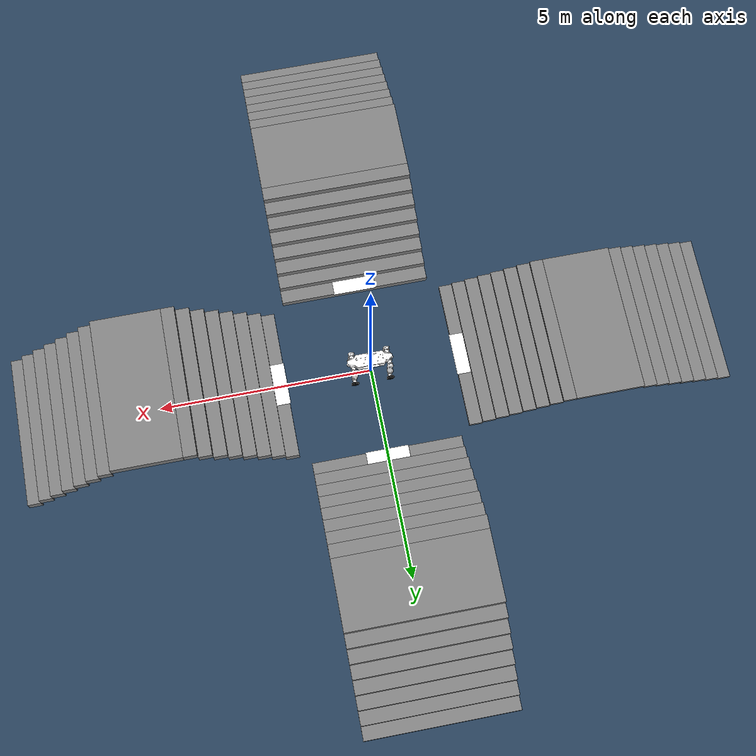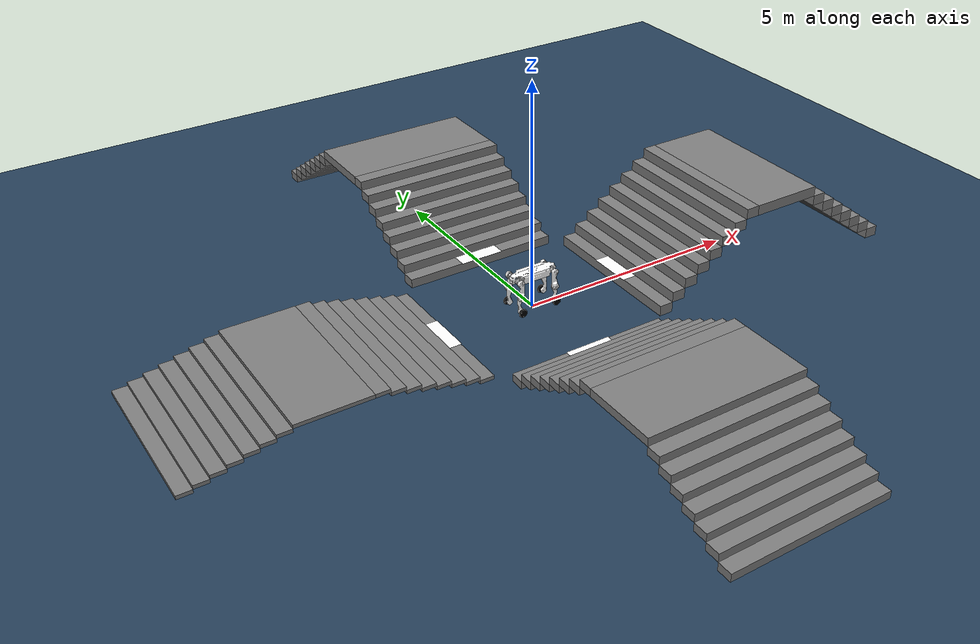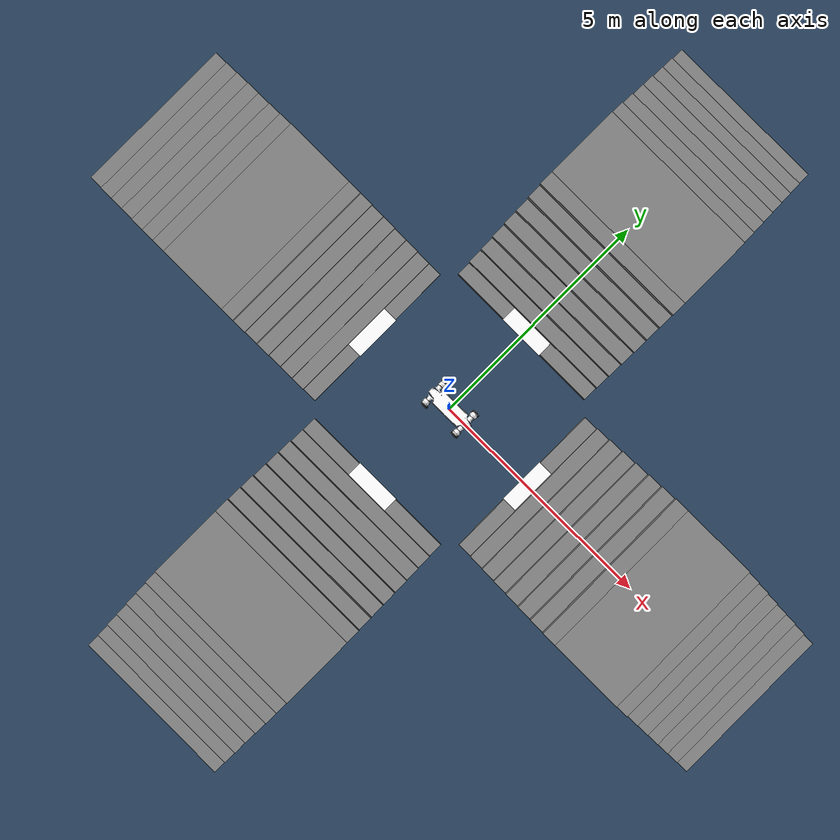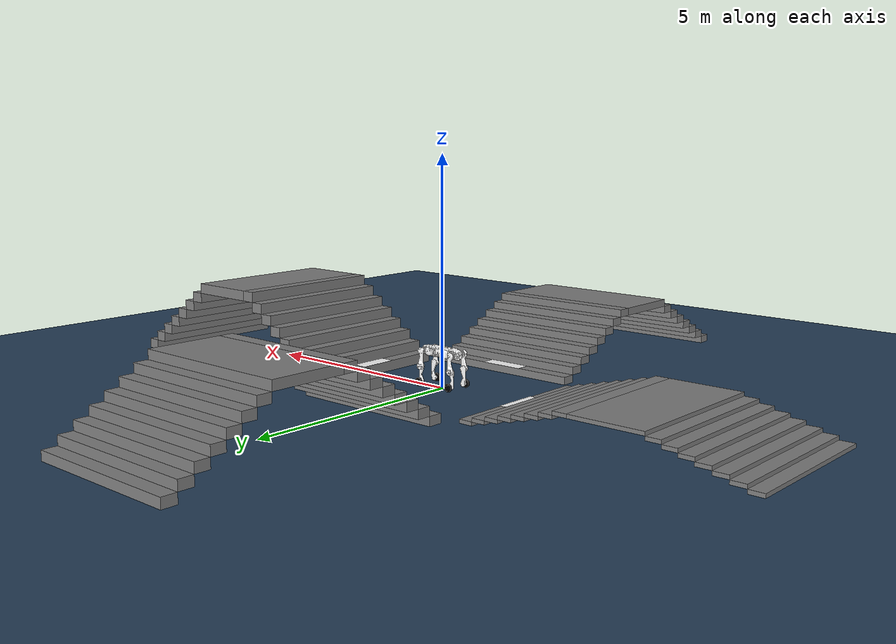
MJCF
<mujoco model="cross_stairs_1_4_7_10">
  <include file="m20_big.xml"/>
  <!-- Terrain: Cross Stairs Arch, Levels: 1,4,7,10. Cross Layout: Center Gap 2.0m. Arch step height: 0.0800 Arch step height: 0.2000 Arch step height: 0.2300 Arch step height: 0.1700 -->
  <statistic center="0 0 0.1" extent="0.8" />
  <visual>
    <headlight diffuse="0.6 0.6 0.6" ambient="0.3 0.3 0.3" specular="0 0 0" />
    <rgba haze="0.15 0.25 0.35 1" />
    <global azimuth="-130" elevation="-20" />
  </visual>
  <asset>
    <texture type="skybox" builtin="gradient" rgb1="0.3 0.5 0.7" rgb2="0 0 0" width="512" height="3072" />
    <texture type="2d" name="groundplane" builtin="checker" mark="edge" rgb1="0.2 0.3 0.4" rgb2="0.1 0.2 0.3" markrgb="0.8 0.8 0.8" width="300" height="300" />
    <material name="groundplane" texture="groundplane" texuniform="true" texrepeat="5 5" reflectance="0.0" />
    <texture name="tex_label_1" type="2d" file="./imgs/label_1.png" />
    <material name="mat_label_1" texture="tex_label_1" specular="0" shininess="0" emission="1" texrepeat="1 1" rgba="1 1 1 1" />
    <texture name="tex_label_7" type="2d" file="./imgs/label_7.png" />
    <material name="mat_label_7" texture="tex_label_7" specular="0" shininess="0" emission="1" texrepeat="1 1" rgba="1 1 1 1" />
    <texture name="tex_label_10" type="2d" file="./imgs/label_10.png" />
    <material name="mat_label_10" texture="tex_label_10" specular="0" shininess="0" emission="1" texrepeat="1 1" rgba="1 1 1 1" />
    <texture name="tex_label_4" type="2d" file="./imgs/label_4.png" />
    <material name="mat_label_4" texture="tex_label_4" specular="0" shininess="0" emission="1" texrepeat="1 1" rgba="1 1 1 1" />
  </asset>
  <worldbody>
    <light pos="0 0 1.5" dir="0 0 -1" directional="true" />
    <geom name="floor" size="0 0 0.05" type="plane" material="groundplane" />
    <geom pos="-2.155 1.8982025386783976e-17 0.04" type="box" size="0.155 1.75 0.04" quat="6.123233995736766e-17 0.0 0.0 1.0" />
    <geom pos="-2.465 5.694607616035192e-17 0.12" type="box" size="0.155 1.75 0.04" quat="6.123233995736766e-17 0.0 0.0 1.0" />
    <geom pos="-2.775 9.491012693391986e-17 0.2" type="box" size="0.155 1.75 0.04" quat="6.123233995736766e-17 0.0 0.0 1.0" />
    <geom pos="-3.085 1.328741777074878e-16 0.28" type="box" size="0.155 1.75 0.04" quat="6.123233995736766e-17 0.0 0.0 1.0" />
    <geom pos="-3.395 1.7083822848105578e-16 0.36000000000000004" type="box" size="0.155 1.75 0.04" quat="6.123233995736766e-17 0.0 0.0 1.0" />
    <geom pos="-3.705 2.0880227925462374e-16 0.44000000000000006" type="box" size="0.155 1.75 0.04" quat="6.123233995736766e-17 0.0 0.0 1.0" />
    <geom pos="-4.015000000000001 2.467663300281917e-16 0.52" type="box" size="0.155 1.75 0.04" quat="6.123233995736766e-17 0.0 0.0 1.0" />
    <geom pos="-4.325 2.8473038080175964e-16 0.6" type="box" size="0.155 1.75 0.04" quat="6.123233995736766e-17 0.0 0.0 1.0" />
    <geom pos="-5.28 4.016841501203319e-16 0.6" type="box" size="0.8 1.75 0.04" quat="6.123233995736766e-17 0.0 0.0 1.0" />
    <geom pos="-6.235 5.186379194389041e-16 0.52" type="box" size="0.155 1.75 0.04" quat="6.123233995736766e-17 0.0 0.0 1.0" />
    <geom pos="-6.545 5.56601970212472e-16 0.44" type="box" size="0.155 1.75 0.04" quat="6.123233995736766e-17 0.0 0.0 1.0" />
    <geom pos="-6.8549999999999995 5.945660209860399e-16 0.36" type="box" size="0.155 1.75 0.04" quat="6.123233995736766e-17 0.0 0.0 1.0" />
    <geom pos="-7.164999999999999 6.325300717596078e-16 0.27999999999999997" type="box" size="0.155 1.75 0.04" quat="6.123233995736766e-17 0.0 0.0 1.0" />
    <geom pos="-7.474999999999999 6.704941225331758e-16 0.19999999999999996" type="box" size="0.155 1.75 0.04" quat="6.123233995736766e-17 0.0 0.0 1.0" />
    <geom pos="-7.784999999999998 7.084581733067436e-16 0.11999999999999995" type="box" size="0.155 1.75 0.04" quat="6.123233995736766e-17 0.0 0.0 1.0" />
    <geom pos="-8.094999999999999 7.464222240803115e-16 0.03999999999999995" type="box" size="0.155 1.75 0.04" quat="6.123233995736766e-17 0.0 0.0 1.0" />
    <geom pos="-2.155 1.8982025386783976e-17 0.082" type="box" size="0.5 0.17532467532467533 0.0001" quat="0.7071067811865476 0.0 0.0 0.7071067811865475" contype="0" conaffinity="0" group="1" material="mat_label_1" rgba="1 1 1 1" />
    <geom pos="9.491012693391988e-18 2.155 0.1" type="box" size="0.155 1.75 0.1" quat="0.7071067811865476 0.0 0.0 0.7071067811865475" />
    <geom pos="2.847303808017596e-17 2.465 0.30000000000000004" type="box" size="0.155 1.75 0.1" quat="0.7071067811865476 0.0 0.0 0.7071067811865475" />
    <geom pos="4.745506346695993e-17 2.775 0.5" type="box" size="0.155 1.75 0.1" quat="0.7071067811865476 0.0 0.0 0.7071067811865475" />
    <geom pos="6.64370888537439e-17 3.085 0.7" type="box" size="0.155 1.75 0.1" quat="0.7071067811865476 0.0 0.0 0.7071067811865475" />
    <geom pos="8.541911424052789e-17 3.395 0.8999999999999999" type="box" size="0.155 1.75 0.1" quat="0.7071067811865476 0.0 0.0 0.7071067811865475" />
    <geom pos="1.0440113962731187e-16 3.705 1.0999999999999999" type="box" size="0.155 1.75 0.1" quat="0.7071067811865476 0.0 0.0 0.7071067811865475" />
    <geom pos="1.2338316501409585e-16 4.015000000000001 1.2999999999999998" type="box" size="0.155 1.75 0.1" quat="0.7071067811865476 0.0 0.0 0.7071067811865475" />
    <geom pos="1.4236519040087982e-16 4.325 1.4999999999999998" type="box" size="0.155 1.75 0.1" quat="0.7071067811865476 0.0 0.0 0.7071067811865475" />
    <geom pos="2.0084207506016595e-16 5.28 1.4999999999999998" type="box" size="0.8 1.75 0.1" quat="0.7071067811865476 0.0 0.0 0.7071067811865475" />
    <geom pos="2.5931895971945205e-16 6.235 1.2999999999999998" type="box" size="0.155 1.75 0.1" quat="0.7071067811865476 0.0 0.0 0.7071067811865475" />
    <geom pos="2.78300985106236e-16 6.545 1.0999999999999999" type="box" size="0.155 1.75 0.1" quat="0.7071067811865476 0.0 0.0 0.7071067811865475" />
    <geom pos="2.9728301049301994e-16 6.8549999999999995 0.8999999999999999" type="box" size="0.155 1.75 0.1" quat="0.7071067811865476 0.0 0.0 0.7071067811865475" />
    <geom pos="3.162650358798039e-16 7.164999999999999 0.7" type="box" size="0.155 1.75 0.1" quat="0.7071067811865476 0.0 0.0 0.7071067811865475" />
    <geom pos="3.352470612665879e-16 7.474999999999999 0.49999999999999994" type="box" size="0.155 1.75 0.1" quat="0.7071067811865476 0.0 0.0 0.7071067811865475" />
    <geom pos="3.542290866533718e-16 7.784999999999998 0.29999999999999993" type="box" size="0.155 1.75 0.1" quat="0.7071067811865476 0.0 0.0 0.7071067811865475" />
    <geom pos="3.7321111204015577e-16 8.094999999999999 0.09999999999999992" type="box" size="0.155 1.75 0.1" quat="0.7071067811865476 0.0 0.0 0.7071067811865475" />
    <geom pos="9.491012693391988e-18 2.155 0.202" type="box" size="0.5 0.17532467532467533 0.0001" quat="1.0 0.0 0.0 0.0" contype="0" conaffinity="0" group="1" material="mat_label_7" rgba="1 1 1 1" />
    <geom pos="2.155 0.0 0.115" type="box" size="0.155 1.75 0.115" quat="1.0 0.0 0.0 0.0" />
    <geom pos="2.465 0.0 0.34500000000000003" type="box" size="0.155 1.75 0.115" quat="1.0 0.0 0.0 0.0" />
    <geom pos="2.775 0.0 0.5750000000000001" type="box" size="0.155 1.75 0.115" quat="1.0 0.0 0.0 0.0" />
    <geom pos="3.085 0.0 0.805" type="box" size="0.155 1.75 0.115" quat="1.0 0.0 0.0 0.0" />
    <geom pos="3.395 0.0 1.0350000000000001" type="box" size="0.155 1.75 0.115" quat="1.0 0.0 0.0 0.0" />
    <geom pos="3.705 0.0 1.2650000000000001" type="box" size="0.155 1.75 0.115" quat="1.0 0.0 0.0 0.0" />
    <geom pos="4.015000000000001 0.0 1.495" type="box" size="0.155 1.75 0.115" quat="1.0 0.0 0.0 0.0" />
    <geom pos="4.325 0.0 1.725" type="box" size="0.155 1.75 0.115" quat="1.0 0.0 0.0 0.0" />
    <geom pos="5.28 0.0 1.725" type="box" size="0.8 1.75 0.115" quat="1.0 0.0 0.0 0.0" />
    <geom pos="6.235 0.0 1.495" type="box" size="0.155 1.75 0.115" quat="1.0 0.0 0.0 0.0" />
    <geom pos="6.545 0.0 1.2650000000000001" type="box" size="0.155 1.75 0.115" quat="1.0 0.0 0.0 0.0" />
    <geom pos="6.8549999999999995 0.0 1.0350000000000001" type="box" size="0.155 1.75 0.115" quat="1.0 0.0 0.0 0.0" />
    <geom pos="7.164999999999999 0.0 0.8050000000000002" type="box" size="0.155 1.75 0.115" quat="1.0 0.0 0.0 0.0" />
    <geom pos="7.474999999999999 0.0 0.5750000000000002" type="box" size="0.155 1.75 0.115" quat="1.0 0.0 0.0 0.0" />
    <geom pos="7.784999999999998 0.0 0.3450000000000002" type="box" size="0.155 1.75 0.115" quat="1.0 0.0 0.0 0.0" />
    <geom pos="8.094999999999999 0.0 0.11500000000000019" type="box" size="0.155 1.75 0.115" quat="1.0 0.0 0.0 0.0" />
    <geom pos="2.155 0.0 0.232" type="box" size="0.5 0.17532467532467533 0.0001" quat="0.7071067811865476 0.0 0.0 -0.7071067811865475" contype="0" conaffinity="0" group="1" material="mat_label_10" rgba="1 1 1 1" />
    <geom pos="9.491012693391988e-18 -2.155 0.08499999999999999" type="box" size="0.155 1.75 0.08499999999999999" quat="0.7071067811865476 0.0 0.0 -0.7071067811865475" />
    <geom pos="2.847303808017596e-17 -2.465 0.255" type="box" size="0.155 1.75 0.08499999999999999" quat="0.7071067811865476 0.0 0.0 -0.7071067811865475" />
    <geom pos="4.745506346695993e-17 -2.775 0.425" type="box" size="0.155 1.75 0.08499999999999999" quat="0.7071067811865476 0.0 0.0 -0.7071067811865475" />
    <geom pos="6.64370888537439e-17 -3.085 0.595" type="box" size="0.155 1.75 0.08499999999999999" quat="0.7071067811865476 0.0 0.0 -0.7071067811865475" />
    <geom pos="8.541911424052789e-17 -3.395 0.7649999999999999" type="box" size="0.155 1.75 0.08499999999999999" quat="0.7071067811865476 0.0 0.0 -0.7071067811865475" />
    <geom pos="1.0440113962731187e-16 -3.705 0.9349999999999998" type="box" size="0.155 1.75 0.08499999999999999" quat="0.7071067811865476 0.0 0.0 -0.7071067811865475" />
    <geom pos="1.2338316501409585e-16 -4.015000000000001 1.1049999999999998" type="box" size="0.155 1.75 0.08499999999999999" quat="0.7071067811865476 0.0 0.0 -0.7071067811865475" />
    <geom pos="1.4236519040087982e-16 -4.325 1.2749999999999997" type="box" size="0.155 1.75 0.08499999999999999" quat="0.7071067811865476 0.0 0.0 -0.7071067811865475" />
    <geom pos="2.0084207506016595e-16 -5.28 1.2749999999999997" type="box" size="0.8 1.75 0.08499999999999999" quat="0.7071067811865476 0.0 0.0 -0.7071067811865475" />
    <geom pos="2.5931895971945205e-16 -6.235 1.1049999999999998" type="box" size="0.155 1.75 0.08499999999999999" quat="0.7071067811865476 0.0 0.0 -0.7071067811865475" />
    <geom pos="2.78300985106236e-16 -6.545 0.9349999999999998" type="box" size="0.155 1.75 0.08499999999999999" quat="0.7071067811865476 0.0 0.0 -0.7071067811865475" />
    <geom pos="2.9728301049301994e-16 -6.8549999999999995 0.7649999999999999" type="box" size="0.155 1.75 0.08499999999999999" quat="0.7071067811865476 0.0 0.0 -0.7071067811865475" />
    <geom pos="3.162650358798039e-16 -7.164999999999999 0.595" type="box" size="0.155 1.75 0.08499999999999999" quat="0.7071067811865476 0.0 0.0 -0.7071067811865475" />
    <geom pos="3.352470612665879e-16 -7.474999999999999 0.425" type="box" size="0.155 1.75 0.08499999999999999" quat="0.7071067811865476 0.0 0.0 -0.7071067811865475" />
    <geom pos="3.542290866533718e-16 -7.784999999999998 0.255" type="box" size="0.155 1.75 0.08499999999999999" quat="0.7071067811865476 0.0 0.0 -0.7071067811865475" />
    <geom pos="3.7321111204015577e-16 -8.094999999999999 0.08500000000000002" type="box" size="0.155 1.75 0.08499999999999999" quat="0.7071067811865476 0.0 0.0 -0.7071067811865475" />
    <geom pos="9.491012693391988e-18 -2.155 0.172" type="box" size="0.5 0.17532467532467533 0.0001" quat="6.123233995736766e-17 0.0 0.0 -1.0" contype="0" conaffinity="0" group="1" material="mat_label_4" rgba="1 1 1 1" />
  </worldbody>
</mujoco>

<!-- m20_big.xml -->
<mujoco model="m20_big">
  <compiler angle="radian" meshdir="../meshes/"/>

  <!-- 默认只显示 group=1 的 visual mesh；碰撞 primitive 在 group=3 且 alpha=0 -->
  <visual>
    <map znear="0.001"/>
  </visual>
  <default>
    <joint damping="0.001" armature="0.01" frictionloss="0.1"/>
  </default>
  <asset>
    <mesh name="base" file="base.STL"/>
    <mesh name="FR_hip" file="FR_hip.STL"/>
    <mesh name="FR_thigh" file="FR_thigh.STL"/>
    <mesh name="FR_calf" file="FR_calf.STL"/>
    <mesh name="FR_wheel" file="FR_wheel.STL"/>
    <mesh name="FL_hip" file="FL_hip.STL"/>
    <mesh name="FL_thigh" file="FL_thigh.STL"/>
    <mesh name="FL_calf" file="FL_calf.STL"/>
    <mesh name="FL_wheel" file="FL_wheel.STL"/>
    <mesh name="RR_hip" file="RR_hip.STL"/>
    <mesh name="RR_thigh" file="RR_thigh.STL"/>
    <mesh name="RR_calf" file="RR_calf.STL"/>
    <mesh name="RR_wheel" file="RR_wheel.STL"/>
    <mesh name="RL_hip" file="RL_hip.STL"/>
    <mesh name="RL_thigh" file="RL_thigh.STL"/>
    <mesh name="RL_calf" file="RL_calf.STL"/>
    <mesh name="RL_wheel" file="RL_wheel.STL"/>
  </asset>

  <worldbody>
    <body name="base" pos="0 0 0.80">
      <inertial pos="0.01588 -0.012088 0.003592" quat="0.00498892 0.707082 0.00522655 0.707095" mass="28.762" diaginertia="2.29693 2.15729 0.348949"/>
      <joint name="floating_base_joint" type="free"/>
      <site name="imu_site" pos="0.0632 -0.0268 0.0435" size="0.005" rgba="1 0 0 1"/>
      <site name="base_site" pos="0 0 0" quat="1 0 0 0"/>
      <geom type="mesh" contype="0" conaffinity="0" group="1" density="0" rgba="1 1 1 1" mesh="base"/>
      <geom group="3" size="0.32 0.166 0.091" pos="0 -0.002 0" type="box" rgba="1 1 1 0"/>
      <geom group="3" size="0.1175 0.05 0.091" pos="0.436 0 0" type="box" rgba="1 1 1 0"/>
      <geom group="3" size="0.1 0.05 0.091" pos="-0.42 0 0" type="box" rgba="1 1 1 0"/>
      <body name="FR_hip" pos="0.3304 -0.099245 -0.00021622">
        <inertial pos="0.049898 -0.016738 -0.001076" quat="0.447986 0.323075 0.639017 0.535339" mass="1.024" diaginertia="0.00358965 0.00336041 0.00153094"/>
        <joint name="FR_hip_joint" pos="0 0 0" axis="1 0 0" range="-0.436 0.611" actuatorfrcrange="-76.4 76.4"/>
        <geom type="mesh" contype="0" conaffinity="0" group="1" density="0" rgba="1 1 1 1" mesh="FR_hip"/>
        <geom group="3" size="0.042 0.03" pos="0.04 0 0" quat="0.707388 0 0.706825 0" type="cylinder" rgba="1 1 1 0"/>
        <geom group="3" size="0.0643 0.065" pos="0.09 -0.0535 0" quat="0.707388 0.706825 0 0" type="cylinder" rgba="1 1 1 0"/>
        <body name="FR_thigh" pos="0.0886403 -0.0798469 -0.00030154">
          <inertial pos="-0.002186 -0.046729 -0.169142" quat="0.703235 0.028226 -0.0276883 0.709857" mass="4.376" diaginertia="0.118698 0.115288 0.00656187"/>
          <joint name="FR_thigh_joint" pos="0 0 0" axis="0 1 0" range="-2.583 2.286" actuatorfrcrange="-76.4 76.4"/>
          <geom type="mesh" contype="0" conaffinity="0" group="1" density="0" rgba="1 1 1 1" mesh="FR_thigh"/>
          <geom group="3" size="0.0475 0.01825 0.15" pos="-0.0285 -0.055 -0.165" type="box" rgba="1 1 1 0"/>
          <geom group="3" size="0.075 0.036" pos="0 -0.07 -0.33" quat="0.707388 0.706825 0 0" type="cylinder" rgba="1 1 1 0"/>
          <geom group="3" size="0.075 0.01875" pos="0 -0.055 0" quat="0.707388 0.706825 0 0" type="cylinder" rgba="1 1 1 0"/>
          <body name="FR_calf" pos="0 -0.0331089 -0.33">
            <inertial pos="0.0075 0.01135 -0.16329" quat="0.721057 0.0238369 -0.0210289 0.692146" mass="1.278" diaginertia="0.0279115 0.0268394 0.00216508"/>
            <joint name="FR_calf_joint" pos="0 0 0" axis="0 1 0" range="-2.792 2.809" actuatorfrcrange="-76.4 76.4"/>
            <geom type="mesh" contype="0" conaffinity="0" group="1" density="0" rgba="1 1 1 1" mesh="FR_calf"/>
            <geom group="3" size="0.0325 0.01875 0.15" pos="0.028 0.0195 -0.165" quat="0.999888 0 -0.0149994 0" type="box" rgba="1 1 1 0"/>
            <geom group="3" size="0.068 0.0195" pos="0 0.02 -0.33" quat="0.707388 0.706825 0 0" type="cylinder" rgba="1 1 1 0"/>
            <geom group="3" size="0.068 0.0195" pos="0 0.02 0" quat="0.707388 0.706825 0 0" type="cylinder" rgba="1 1 1 0"/>
            <geom group="3" size="0.0385 0.02" pos="0 -0.02 -0.33" quat="0.707388 0.706825 0 0" type="cylinder" rgba="1 1 1 0"/>
            <body name="FR_wheel" pos="0.000112374 -0.0287002 -0.330042">
              <inertial pos="-0.00011 -0.047924 4.2e-05" quat="0.707107 0 0 0.707107" mass="3.18" diaginertia="0.01238 0.006847 0.006847"/>
              <joint name="FR_foot_joint" pos="0 0 0" axis="0 1 0" range="-999999 999999" actuatorfrcrange="-21.6 21.6"/>
              <geom type="mesh" contype="0" conaffinity="0" group="1" density="0" rgba="0 0 0 1" mesh="FR_wheel"/>
              <geom group="3" size="0.09 0.0325" pos="0 -0.047 0" quat="0.707388 0.706825 0 0" type="cylinder" rgba="0 0 0 0"/>
            </body>
          </body>
        </body>
      </body>
      <body name="FL_hip" pos="0.3304 0.096756 -0.00021622">
        <inertial pos="0.054668 0.017679 -0.000496" quat="0.519745 0.627006 0.347794 0.464508" mass="1.024" diaginertia="0.00360948 0.00341276 0.00169176"/>
        <joint name="FL_hip_joint" pos="0 0 0" axis="1 0 0" range="-0.611 0.436" actuatorfrcrange="-76.4 76.4"/>
        <geom type="mesh" contype="0" conaffinity="0" group="1" density="0" rgba="1 1 1 1" mesh="FL_hip"/>
        <geom group="3" size="0.042 0.03" pos="0.04 0 0" quat="0.707388 0 0.706825 0" type="cylinder" rgba="1 1 1 0"/>
        <geom group="3" size="0.0643 0.065" pos="0.09 0.0535 0" quat="0.707388 0.706825 0 0" type="cylinder" rgba="1 1 1 0"/>
        <body name="FL_thigh" pos="0.0896011 0.082936 0.000217046">
          <inertial pos="-0.002184 0.04671 -0.169145" quat="0.709664 -0.0276758 0.0281586 0.703433" mass="4.376" diaginertia="0.11869 0.115281 0.00656092"/>
          <joint name="FL_thigh_joint" pos="0 0 0" axis="0 1 0" range="-2.583 2.286" actuatorfrcrange="-76.4 76.4"/>
          <geom type="mesh" contype="0" conaffinity="0" group="1" density="0" rgba="1 1 1 1" mesh="FL_thigh"/>
          <geom group="3" size="0.0475 0.01825 0.15" pos="-0.0285 0.055 -0.165" type="box" rgba="1 1 1 0"/>
          <geom group="3" size="0.075 0.036" pos="0 0.07 -0.33" quat="0.707388 0.706825 0 0" type="cylinder" rgba="1 1 1 0"/>
          <geom group="3" size="0.075 0.01875" pos="0 0.055 0" quat="0.707388 0.706825 0 0" type="cylinder" rgba="1 1 1 0"/>
          <body name="FL_calf" pos="0 0.0330573 -0.33">
            <inertial pos="0.007693 -0.011342 -0.163789" quat="0.692701 -0.020635 0.0233317 0.720552" mass="1.278" diaginertia="0.0276231 0.0265555 0.00191536"/>
            <joint name="FL_calf_joint" pos="0 0 0" axis="0 1 0" range="-2.792 2.809" actuatorfrcrange="-76.4 76.4"/>
            <geom type="mesh" contype="0" conaffinity="0" group="1" density="0" rgba="1 1 1 1" mesh="FL_calf"/>
            <geom group="3" size="0.0325 0.01875 0.15" pos="0.028 -0.0195 -0.165" quat="0.999888 0 -0.0149994 0" type="box" rgba="1 1 1 0"/>
            <geom group="3" size="0.068 0.0195" pos="0 -0.02 -0.33" quat="0.707388 0.706825 0 0" type="cylinder" rgba="1 1 1 0"/>
            <geom group="3" size="0.068 0.0195" pos="0 -0.02 0" quat="0.707388 0.706825 0 0" type="cylinder" rgba="1 1 1 0"/>
            <geom group="3" size="0.0385 0.02" pos="0 0.02 -0.33" quat="0.707388 0.706825 0 0" type="cylinder" rgba="1 1 1 0"/>
            <body name="FL_wheel" pos="0.000114419 0.028752 -0.329964">
              <inertial pos="-0.000112 0.047924 -3.6e-05" quat="0.707107 0 0 0.707107" mass="3.18" diaginertia="0.012379 0.006847 0.006847"/>
              <joint name="FL_foot_joint" pos="0 0 0" axis="0 1 0" range="-999999 999999" actuatorfrcrange="-21.6 21.6"/>
              <geom type="mesh" contype="0" conaffinity="0" group="1" density="0" rgba="0 0 0 1" mesh="FL_wheel"/>
              <geom group="3" size="0.09 0.0325" pos="0 0.047 0" quat="0.707388 0.706825 0 0" type="cylinder" rgba="0 0 0 0"/>
            </body>
          </body>
        </body>
      </body>
      <body name="RR_hip" pos="-0.29716 -0.099245 -0.00021622">
        <inertial pos="-0.073124 -0.020209 -0.009702" quat="0.639525 0.5354 0.447645 0.32244" mass="1.024" diaginertia="0.00359903 0.00336831 0.00154066"/>
        <joint name="RR_hip_joint" pos="0 0 0" axis="1 0 0" range="-0.436 0.611" actuatorfrcrange="-76.4 76.4"/>
        <geom type="mesh" contype="0" conaffinity="0" group="1" density="0" rgba="1 1 1 1" mesh="RR_hip"/>
        <geom group="3" size="0.042 0.03" pos="-0.06 0 -0.009" quat="0.707388 0 0.706825 0" type="cylinder" rgba="1 1 1 0"/>
        <geom group="3" size="0.0643 0.065" pos="-0.112 -0.0535 -0.009" quat="0.707388 0.706825 0 0" type="cylinder" rgba="1 1 1 0"/>
        <body name="RR_thigh" pos="-0.111606 -0.0830547 -0.00891664">
          <inertial pos="0.002184 -0.046675 -0.169144" quat="0.709658 0.0276681 -0.0281579 0.703439" mass="4.376" diaginertia="0.118711 0.115286 0.00656502"/>
          <joint name="RR_thigh_joint" pos="0 0 0" axis="0 1 0" range="-2.583 2.286" actuatorfrcrange="-76.4 76.4"/>
          <geom type="mesh" contype="0" conaffinity="0" group="1" density="0" rgba="1 1 1 1" mesh="RR_thigh"/>
          <geom group="3" size="0.0475 0.01825 0.15" pos="0.0285 -0.055 -0.165" type="box" rgba="1 1 1 0"/>
          <geom group="3" size="0.075 0.036" pos="0 -0.07 -0.33" quat="0.707388 0.706825 0 0" type="cylinder" rgba="1 1 1 0"/>
          <geom group="3" size="0.075 0.01875" pos="0 -0.055 0" quat="0.707388 0.706825 0 0" type="cylinder" rgba="1 1 1 0"/>
          <body name="RR_calf" pos="0 -0.0330574 -0.33">
            <inertial pos="-0.007691 0.011342 -0.163799" quat="0.692667 0.0206501 -0.0233205 0.720585" mass="1.278" diaginertia="0.0276202 0.0265535 0.00191436"/>
            <joint name="RR_calf_joint" pos="0 0 0" axis="0 1 0" range="-2.809 2.792" actuatorfrcrange="-76.4 76.4"/>
            <geom type="mesh" contype="0" conaffinity="0" group="1" density="0" rgba="1 1 1 1" mesh="RR_calf"/>
            <geom group="3" size="0.0325 0.01875 0.15" pos="-0.028 0.0195 -0.165" quat="0.999888 0 -0.0149994 0" type="box" rgba="1 1 1 0"/>
            <geom group="3" size="0.068 0.0195" pos="0 0.02 -0.33" quat="0.707388 0.706825 0 0" type="cylinder" rgba="1 1 1 0"/>
            <geom group="3" size="0.068 0.0195" pos="0 0.02 0" quat="0.707388 0.706825 0 0" type="cylinder" rgba="1 1 1 0"/>
            <geom group="3" size="0.0385 0.02" pos="0 -0.02 -0.33" quat="0.707388 0.706825 0 0" type="cylinder" rgba="1 1 1 0"/>
            <body name="RR_wheel" pos="0.000111969 -0.028752 -0.330029">
              <inertial pos="-0.000114 -0.047924 2.9e-05" quat="0.707107 0 0 0.707107" mass="3.18" diaginertia="0.012379 0.006847 0.006847"/>
              <joint name="RR_foot_joint" pos="0 0 0" axis="0 1 0" range="-999999 999999" actuatorfrcrange="-21.6 21.6"/>
              <geom type="mesh" contype="0" conaffinity="0" group="1" density="0" rgba="0 0 0 1" mesh="RR_wheel"/>
              <geom group="3" size="0.09 0.0325" pos="0 -0.047 0" quat="0.707388 0.706825 0 0" type="cylinder" rgba="0 0 0 0"/>
            </body>
          </body>
        </body>
      </body>
      <body name="RL_hip" pos="-0.297165 0.0967556 -0.00021622">
        <inertial pos="-0.084095 0.019827 -0.000555" quat="0.323482 0.447589 0.535901 0.638619" mass="1.024" diaginertia="0.00358862 0.00335954 0.00153083"/>
        <joint name="RL_hip_joint" pos="0 0 0" axis="1 0 0" range="-0.611 0.436" actuatorfrcrange="-76.4 76.4"/>
        <geom type="mesh" contype="0" conaffinity="0" group="1" density="0" rgba="1 1 1 1" mesh="RL_hip"/>
        <geom group="3" size="0.042 0.03" pos="-0.06 0 0" quat="0.707388 0 0.706825 0" type="cylinder" rgba="1 1 1 0"/>
        <geom group="3" size="0.0643 0.065" pos="-0.1235 0.0535 0" quat="0.707388 0.706825 0 0" type="cylinder" rgba="1 1 1 0"/>
        <body name="RL_thigh" pos="-0.122835 0.0829361 0.000216812">
          <inertial pos="0.002185 0.046712 -0.169142" quat="0.703239 -0.0282652 0.0277275 0.70985" mass="4.376" diaginertia="0.11871 0.115293 0.00656485"/>
          <joint name="RL_thigh_joint" pos="0 0 0" axis="0 1 0" range="-2.286 2.583" actuatorfrcrange="-76.4 76.4"/>
          <geom type="mesh" contype="0" conaffinity="0" group="1" density="0" rgba="1 1 1 1" mesh="RL_thigh"/>
          <geom group="3" size="0.0475 0.01825 0.15" pos="0.0285 0.055 -0.165" type="box" rgba="1 1 1 0"/>
          <geom group="3" size="0.075 0.036" pos="0 0.07 -0.33" quat="0.707388 0.706825 0 0" type="cylinder" rgba="1 1 1 0"/>
          <geom group="3" size="0.075 0.01875" pos="0 0.055 0" quat="0.707388 0.706825 0 0" type="cylinder" rgba="1 1 1 0"/>
          <body name="RL_calf" pos="0 0.0331089 -0.33">
            <inertial pos="-0.007499 -0.01135 -0.16329" quat="0.721089 -0.0236202 0.0208375 0.692126" mass="1.278" diaginertia="0.0279106 0.0268394 0.00192902"/>
            <joint name="RL_calf_joint" pos="0 0 0" axis="0 1 0" range="-2.809 2.792" actuatorfrcrange="-76.4 76.4"/>
            <geom type="mesh" contype="0" conaffinity="0" group="1" density="0" rgba="1 1 1 1" mesh="RL_calf"/>
            <geom group="3" size="0.0325 0.01875 0.15" pos="-0.028 -0.0195 -0.165" quat="0.999888 0 -0.0149994 0" type="box" rgba="1 1 1 0"/>
            <geom group="3" size="0.068 0.0195" pos="0 -0.02 -0.33" quat="0.707388 0.706825 0 0" type="cylinder" rgba="1 1 1 0"/>
            <geom group="3" size="0.068 0.0195" pos="0 -0.02 0" quat="0.707388 0.706825 0 0" type="cylinder" rgba="1 1 1 0"/>
            <geom group="3" size="0.0385 0.02" pos="0 0.02 -0.33" quat="0.707388 0.706825 0 0" type="cylinder" rgba="1 1 1 0"/>
            <body name="RL_wheel" pos="-0.000112115 0.0287002 -0.330042">
              <inertial pos="0.00011 0.047924 4.2e-05" quat="0.707107 0 0 0.707107" mass="3.18" diaginertia="0.01238 0.006847 0.006847"/>
              <joint name="RL_foot_joint" pos="0 0 0" axis="0 1 0" range="-999999 999999" actuatorfrcrange="-21.6 21.6"/>
              <geom type="mesh" contype="0" conaffinity="0" group="1" density="0" rgba="0 0 0 1" mesh="RL_wheel"/>
              <geom group="3" size="0.09 0.0325" pos="0 0.047 0" quat="0.707388 0.706825 0 0" type="cylinder" rgba="0 0 0 0"/>
            </body>
          </body>
        </body>
      </body>
    </body>
  </worldbody>

  <actuator>
    <!-- Order follows MuJoCo qpos / body tree: FR, FL, RR, RL -->
    <motor name="FR_hip_joint" joint="FR_hip_joint" ctrllimited="true" ctrlrange="-76.4 76.4" gear="1"/>
    <motor name="FR_thigh_joint" joint="FR_thigh_joint" ctrllimited="true" ctrlrange="-76.4 76.4" gear="1"/>
    <motor name="FR_calf_joint" joint="FR_calf_joint" ctrllimited="true" ctrlrange="-76.4 76.4" gear="1"/>
    <motor name="FR_foot_joint" joint="FR_foot_joint" ctrllimited="true" ctrlrange="-21.6 21.6" gear="1"/>
    <motor name="FL_hip_joint" joint="FL_hip_joint" ctrllimited="true" ctrlrange="-76.4 76.4" gear="1"/>
    <motor name="FL_thigh_joint" joint="FL_thigh_joint" ctrllimited="true" ctrlrange="-76.4 76.4" gear="1"/>
    <motor name="FL_calf_joint" joint="FL_calf_joint" ctrllimited="true" ctrlrange="-76.4 76.4" gear="1"/>
    <motor name="FL_foot_joint" joint="FL_foot_joint" ctrllimited="true" ctrlrange="-21.6 21.6" gear="1"/>
    <motor name="RR_hip_joint" joint="RR_hip_joint" ctrllimited="true" ctrlrange="-76.4 76.4" gear="1"/>
    <motor name="RR_thigh_joint" joint="RR_thigh_joint" ctrllimited="true" ctrlrange="-76.4 76.4" gear="1"/>
    <motor name="RR_calf_joint" joint="RR_calf_joint" ctrllimited="true" ctrlrange="-76.4 76.4" gear="1"/>
    <motor name="RR_foot_joint" joint="RR_foot_joint" ctrllimited="true" ctrlrange="-21.6 21.6" gear="1"/>
    <motor name="RL_hip_joint" joint="RL_hip_joint" ctrllimited="true" ctrlrange="-76.4 76.4" gear="1"/>
    <motor name="RL_thigh_joint" joint="RL_thigh_joint" ctrllimited="true" ctrlrange="-76.4 76.4" gear="1"/>
    <motor name="RL_calf_joint" joint="RL_calf_joint" ctrllimited="true" ctrlrange="-76.4 76.4" gear="1"/>
    <motor name="RL_foot_joint" joint="RL_foot_joint" ctrllimited="true" ctrlrange="-21.6 21.6" gear="1"/>
  </actuator>

  <sensor>
    <!-- IMU -->
    <framequat name="base_quat" objtype="site" objname="base_site"/>
    <accelerometer site="imu_site"/>
    <gyro site="imu_site"/>

    <!-- jointpos / jointvel: order matches qpos[7:] and ctrl (FR FL RR RL) -->
    <jointpos name="FR_hip_pos" joint="FR_hip_joint"/>
    <jointpos name="FR_thigh_pos" joint="FR_thigh_joint"/>
    <jointpos name="FR_calf_pos" joint="FR_calf_joint"/>
    <jointpos name="FR_foot_pos" joint="FR_foot_joint"/>
    <jointpos name="FL_hip_pos" joint="FL_hip_joint"/>
    <jointpos name="FL_thigh_pos" joint="FL_thigh_joint"/>
    <jointpos name="FL_calf_pos" joint="FL_calf_joint"/>
    <jointpos name="FL_foot_pos" joint="FL_foot_joint"/>
    <jointpos name="RR_hip_pos" joint="RR_hip_joint"/>
    <jointpos name="RR_thigh_pos" joint="RR_thigh_joint"/>
    <jointpos name="RR_calf_pos" joint="RR_calf_joint"/>
    <jointpos name="RR_foot_pos" joint="RR_foot_joint"/>
    <jointpos name="RL_hip_pos" joint="RL_hip_joint"/>
    <jointpos name="RL_thigh_pos" joint="RL_thigh_joint"/>
    <jointpos name="RL_calf_pos" joint="RL_calf_joint"/>
    <jointpos name="RL_foot_pos" joint="RL_foot_joint"/>

    <jointvel name="FR_hip_vel" joint="FR_hip_joint"/>
    <jointvel name="FR_thigh_vel" joint="FR_thigh_joint"/>
    <jointvel name="FR_calf_vel" joint="FR_calf_joint"/>
    <jointvel name="FR_foot_vel" joint="FR_foot_joint"/>
    <jointvel name="FL_hip_vel" joint="FL_hip_joint"/>
    <jointvel name="FL_thigh_vel" joint="FL_thigh_joint"/>
    <jointvel name="FL_calf_vel" joint="FL_calf_joint"/>
    <jointvel name="FL_foot_vel" joint="FL_foot_joint"/>
    <jointvel name="RR_hip_vel" joint="RR_hip_joint"/>
    <jointvel name="RR_thigh_vel" joint="RR_thigh_joint"/>
    <jointvel name="RR_calf_vel" joint="RR_calf_joint"/>
    <jointvel name="RR_foot_vel" joint="RR_foot_joint"/>
    <jointvel name="RL_hip_vel" joint="RL_hip_joint"/>
    <jointvel name="RL_thigh_vel" joint="RL_thigh_joint"/>
    <jointvel name="RL_calf_vel" joint="RL_calf_joint"/>
    <jointvel name="RL_foot_vel" joint="RL_foot_joint"/>
  </sensor>
</mujoco>
